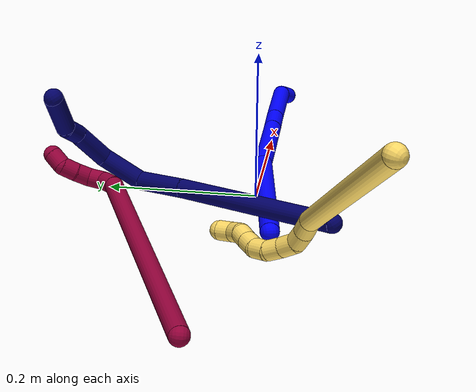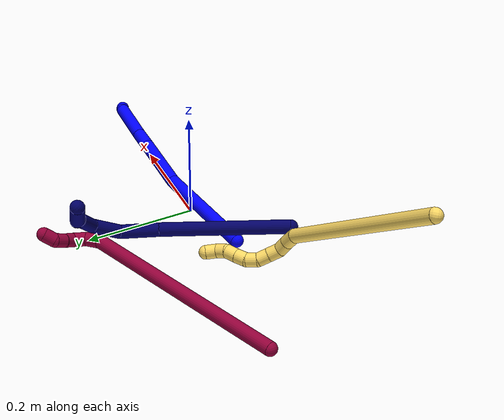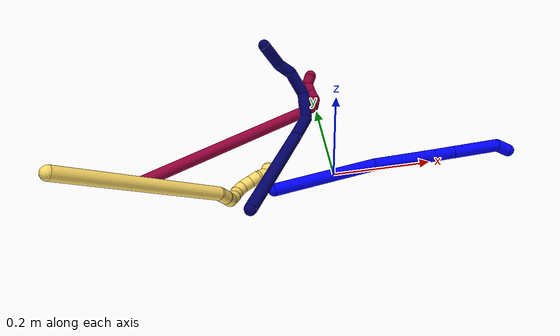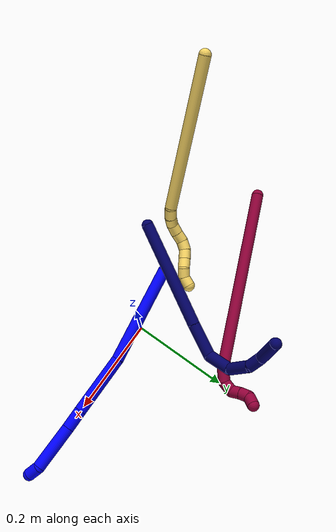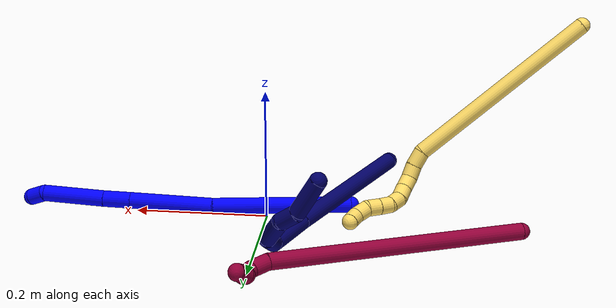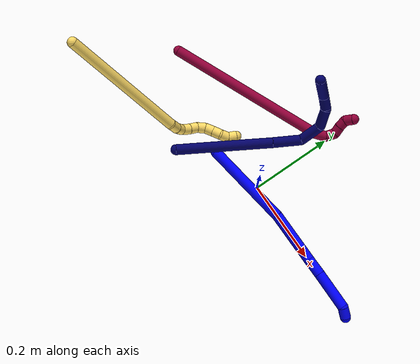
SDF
<sdf version="1.7">
 <world name="default">
  <model name="1">
   <static>0</static>
   <link name="1">
    <collision name="collision-cylinder-e_1_1_4">
     <pose>0.097886 0.025939 0.03041 -0.706214 1.18313 -0.485443</pose>
     <geometry><cylinder><radius>0.0125</radius><length>0.211465</length></cylinder></geometry>
     <surface>
      <friction><ode><mu>1.16</mu><mu2>1.16</mu2><slip1>0</slip1><slip2>0</slip2></ode></friction>
      <contact><ode><kp>1e+06</kp><kd>1</kd><max_vel>0</max_vel><min_depth>0.001</min_depth></ode></contact>
     </surface>
    </collision>
    <visual name="visual-cylinder-e_1_1_4">
     <pose>0.097886 0.025939 0.03041 -0.706214 1.18313 -0.485443</pose>
     <geometry><cylinder><radius>0.0125</radius><length>0.211465</length></cylinder></geometry>
     <material><ambient>0 0 1 1</ambient></material>
    </visual>
    <collision name="collision-cylinder-e_2_4_5">
     <pose>0.250681 0.068848 0.087689 -0.563329 1.04612 -0.330661</pose>
     <geometry><cylinder><radius>0.0125</radius><length>0.126883</length></cylinder></geometry>
     <surface>
      <friction><ode><mu>1.16</mu><mu2>1.16</mu2><slip1>0</slip1><slip2>0</slip2></ode></friction>
      <contact><ode><kp>1e+06</kp><kd>1</kd><max_vel>0</max_vel><min_depth>0.001</min_depth></ode></contact>
     </surface>
    </collision>
    <visual name="visual-cylinder-e_2_4_5">
     <pose>0.250681 0.068848 0.087689 -0.563329 1.04612 -0.330661</pose>
     <geometry><cylinder><radius>0.0125</radius><length>0.126883</length></cylinder></geometry>
     <material><ambient>0 0 1 1</ambient></material>
    </visual>
    <collision name="collision-cylinder-e_3_5_6">
     <pose>0.323725 0.091399 0.123114 -0.57799 1.0579 -0.344132</pose>
     <geometry><cylinder><radius>0.0125</radius><length>0.041631</length></cylinder></geometry>
     <surface>
      <friction><ode><mu>1.16</mu><mu2>1.16</mu2><slip1>0</slip1><slip2>0</slip2></ode></friction>
      <contact><ode><kp>1e+06</kp><kd>1</kd><max_vel>0</max_vel><min_depth>0.001</min_depth></ode></contact>
     </surface>
    </collision>
    <visual name="visual-cylinder-e_3_5_6">
     <pose>0.323725 0.091399 0.123114 -0.57799 1.0579 -0.344132</pose>
     <geometry><cylinder><radius>0.0125</radius><length>0.041631</length></cylinder></geometry>
     <material><ambient>0 0 1 1</ambient></material>
    </visual>
    <collision name="collision-cylinder-e_4_6_7">
     <pose>0.381693 0.110365 0.151748 -0.58797 1.02608 -0.337868</pose>
     <geometry><cylinder><radius>0.0125</radius><length>0.093142</length></cylinder></geometry>
     <surface>
      <friction><ode><mu>1.16</mu><mu2>1.16</mu2><slip1>0</slip1><slip2>0</slip2></ode></friction>
      <contact><ode><kp>1e+06</kp><kd>1</kd><max_vel>0</max_vel><min_depth>0.001</min_depth></ode></contact>
     </surface>
    </collision>
    <visual name="visual-cylinder-e_4_6_7">
     <pose>0.381693 0.110365 0.151748 -0.58797 1.02608 -0.337868</pose>
     <geometry><cylinder><radius>0.0125</radius><length>0.093142</length></cylinder></geometry>
     <material><ambient>0 0 1 1</ambient></material>
    </visual>
    <collision name="collision-cylinder-e_5_7_2">
     <pose>0.431173 0.121071 0.180791 0.290436 0.800865 0.123656</pose>
     <geometry><cylinder><radius>0.0125</radius><length>0.02688</length></cylinder></geometry>
     <surface>
      <friction><ode><mu>1.16</mu><mu2>1.16</mu2><slip1>0</slip1><slip2>0</slip2></ode></friction>
      <contact><ode><kp>1e+06</kp><kd>1</kd><max_vel>0</max_vel><min_depth>0.001</min_depth></ode></contact>
     </surface>
    </collision>
    <visual name="visual-cylinder-e_5_7_2">
     <pose>0.431173 0.121071 0.180791 0.290436 0.800865 0.123656</pose>
     <geometry><cylinder><radius>0.0125</radius><length>0.02688</length></cylinder></geometry>
     <material><ambient>0 0 1 1</ambient></material>
    </visual>
    <collision name="collision-sphere-2">
     <pose>0.440822 0.118392 0.189755 0 -0 0</pose>
     <geometry><sphere><radius>0.0125</radius></sphere></geometry>
     <surface>
      <friction><ode><mu>1.16</mu><mu2>1.16</mu2><slip1>0</slip1><slip2>0</slip2></ode></friction>
      <contact><ode><kp>1e+06</kp><kd>1</kd><max_vel>0</max_vel><min_depth>0.001</min_depth></ode></contact>
     </surface>
    </collision>
    <visual name="visual-sphere-2">
     <pose>0.440822 0.118392 0.189755 0 -0 0</pose>
     <geometry><sphere><radius>0.0125</radius></sphere></geometry>
     <material><ambient>0 0 1 1</ambient></material>
    </visual>
    <collision name="collision-sphere-7">
     <pose>0.421524 0.12375 0.171828 0 -0 0</pose>
     <geometry><sphere><radius>0.0125</radius></sphere></geometry>
     <surface>
      <friction><ode><mu>1.16</mu><mu2>1.16</mu2><slip1>0</slip1><slip2>0</slip2></ode></friction>
      <contact><ode><kp>1e+06</kp><kd>1</kd><max_vel>0</max_vel><min_depth>0.001</min_depth></ode></contact>
     </surface>
    </collision>
    <visual name="visual-sphere-7">
     <pose>0.421524 0.12375 0.171828 0 -0 0</pose>
     <geometry><sphere><radius>0.0125</radius></sphere></geometry>
     <material><ambient>0 0 1 1</ambient></material>
    </visual>
    <collision name="collision-sphere-6">
     <pose>0.341862 0.09698 0.131669 0 -0 0</pose>
     <geometry><sphere><radius>0.0125</radius></sphere></geometry>
     <surface>
      <friction><ode><mu>1.16</mu><mu2>1.16</mu2><slip1>0</slip1><slip2>0</slip2></ode></friction>
      <contact><ode><kp>1e+06</kp><kd>1</kd><max_vel>0</max_vel><min_depth>0.001</min_depth></ode></contact>
     </surface>
    </collision>
    <visual name="visual-sphere-6">
     <pose>0.341862 0.09698 0.131669 0 -0 0</pose>
     <geometry><sphere><radius>0.0125</radius></sphere></geometry>
     <material><ambient>0 0 1 1</ambient></material>
    </visual>
    <collision name="collision-sphere-5">
     <pose>0.305588 0.085819 0.114559 0 -0 0</pose>
     <geometry><sphere><radius>0.0125</radius></sphere></geometry>
     <surface>
      <friction><ode><mu>1.16</mu><mu2>1.16</mu2><slip1>0</slip1><slip2>0</slip2></ode></friction>
      <contact><ode><kp>1e+06</kp><kd>1</kd><max_vel>0</max_vel><min_depth>0.001</min_depth></ode></contact>
     </surface>
    </collision>
    <visual name="visual-sphere-5">
     <pose>0.305588 0.085819 0.114559 0 -0 0</pose>
     <geometry><sphere><radius>0.0125</radius></sphere></geometry>
     <material><ambient>0 0 1 1</ambient></material>
    </visual>
    <collision name="collision-sphere-1">
     <geometry><sphere><radius>0.0125</radius></sphere></geometry>
     <surface>
      <friction><ode><mu>1.16</mu><mu2>1.16</mu2><slip1>0</slip1><slip2>0</slip2></ode></friction>
      <contact><ode><kp>1e+06</kp><kd>1</kd><max_vel>0</max_vel><min_depth>0.001</min_depth></ode></contact>
     </surface>
    </collision>
    <visual name="visual-sphere-1">
     <geometry><sphere><radius>0.0125</radius></sphere></geometry>
     <material><ambient>0 0 1 1</ambient></material>
    </visual>
    <collision name="collision-sphere-4">
     <pose>0.195773 0.051878 0.06082 0 -0 0</pose>
     <geometry><sphere><radius>0.0125</radius></sphere></geometry>
     <surface>
      <friction><ode><mu>1.16</mu><mu2>1.16</mu2><slip1>0</slip1><slip2>0</slip2></ode></friction>
      <contact><ode><kp>1e+06</kp><kd>1</kd><max_vel>0</max_vel><min_depth>0.001</min_depth></ode></contact>
     </surface>
    </collision>
    <visual name="visual-sphere-4">
     <pose>0.195773 0.051878 0.06082 0 -0 0</pose>
     <geometry><sphere><radius>0.0125</radius></sphere></geometry>
     <material><ambient>0 0 1 1</ambient></material>
    </visual>
    <inertial>
     <pose>0.22625 0.06312 0.083352 0 -0 0</pose>
     <mass>0.5</mass>
     <inertia>
      <ixx>0.000242</ixx>
      <ixy>0</ixy>
      <ixz>0</ixz>
      <iyy>0.000829</iyy>
      <iyz>0</iyz>
      <izz>-0.001207</izz>
     </inertia>
    </inertial>
   </link>
   <pose>-0.125701 -0.032196 0.012259 1.63876 0.236014 0.462138</pose>
  </model>
  <model name="5">
   <static>0</static>
   <link name="5">
    <collision name="collision-cylinder-e_1_1_4">
     <pose>0.031094 0.1126 -0.103264 -2.31297 0.200775 -0.450321</pose>
     <geometry><cylinder><radius>0.0125</radius><length>0.311827</length></cylinder></geometry>
     <surface>
      <friction><ode><mu>1.16</mu><mu2>1.16</mu2><slip1>0</slip1><slip2>0</slip2></ode></friction>
      <contact><ode><kp>1e+06</kp><kd>1</kd><max_vel>0</max_vel><min_depth>0.001</min_depth></ode></contact>
     </surface>
    </collision>
    <visual name="visual-cylinder-e_1_1_4">
     <pose>0.031094 0.1126 -0.103264 -2.31297 0.200775 -0.450321</pose>
     <geometry><cylinder><radius>0.0125</radius><length>0.311827</length></cylinder></geometry>
     <material><ambient>1 0.858824 0.4 1</ambient></material>
    </visual>
    <collision name="collision-cylinder-e_2_4_5">
     <pose>0.068732 0.233858 -0.212446 -2.17048 0.557921 -0.994589</pose>
     <geometry><cylinder><radius>0.0125</radius><length>0.024723</length></cylinder></geometry>
     <surface>
      <friction><ode><mu>1.16</mu><mu2>1.16</mu2><slip1>0</slip1><slip2>0</slip2></ode></friction>
      <contact><ode><kp>1e+06</kp><kd>1</kd><max_vel>0</max_vel><min_depth>0.001</min_depth></ode></contact>
     </surface>
    </collision>
    <visual name="visual-cylinder-e_2_4_5">
     <pose>0.068732 0.233858 -0.212446 -2.17048 0.557921 -0.994589</pose>
     <geometry><cylinder><radius>0.0125</radius><length>0.024723</length></cylinder></geometry>
     <material><ambient>1 0.858824 0.4 1</ambient></material>
    </visual>
    <collision name="collision-cylinder-e_3_5_6">
     <pose>0.082415 0.2483 -0.223436 -2.29049 0.748007 -1.42733</pose>
     <geometry><cylinder><radius>0.0125</radius><length>0.02099</length></cylinder></geometry>
     <surface>
      <friction><ode><mu>1.16</mu><mu2>1.16</mu2><slip1>0</slip1><slip2>0</slip2></ode></friction>
      <contact><ode><kp>1e+06</kp><kd>1</kd><max_vel>0</max_vel><min_depth>0.001</min_depth></ode></contact>
     </surface>
    </collision>
    <visual name="visual-cylinder-e_3_5_6">
     <pose>0.082415 0.2483 -0.223436 -2.29049 0.748007 -1.42733</pose>
     <geometry><cylinder><radius>0.0125</radius><length>0.02099</length></cylinder></geometry>
     <material><ambient>1 0.858824 0.4 1</ambient></material>
    </visual>
    <collision name="collision-cylinder-e_4_6_7">
     <pose>0.095686 0.256122 -0.237119 -2.90946 0.606 -2.42766</pose>
     <geometry><cylinder><radius>0.0125</radius><length>0.021534</length></cylinder></geometry>
     <surface>
      <friction><ode><mu>1.16</mu><mu2>1.16</mu2><slip1>0</slip1><slip2>0</slip2></ode></friction>
      <contact><ode><kp>1e+06</kp><kd>1</kd><max_vel>0</max_vel><min_depth>0.001</min_depth></ode></contact>
     </surface>
    </collision>
    <visual name="visual-cylinder-e_4_6_7">
     <pose>0.095686 0.256122 -0.237119 -2.90946 0.606 -2.42766</pose>
     <geometry><cylinder><radius>0.0125</radius><length>0.021534</length></cylinder></geometry>
     <material><ambient>1 0.858824 0.4 1</ambient></material>
    </visual>
    <collision name="collision-cylinder-e_5_7_8">
     <pose>0.107713 0.258769 -0.254169 -3.06931 0.608506 -2.9123</pose>
     <geometry><cylinder><radius>0.0125</radius><length>0.020621</length></cylinder></geometry>
     <surface>
      <friction><ode><mu>1.16</mu><mu2>1.16</mu2><slip1>0</slip1><slip2>0</slip2></ode></friction>
      <contact><ode><kp>1e+06</kp><kd>1</kd><max_vel>0</max_vel><min_depth>0.001</min_depth></ode></contact>
     </surface>
    </collision>
    <visual name="visual-cylinder-e_5_7_8">
     <pose>0.107713 0.258769 -0.254169 -3.06931 0.608506 -2.9123</pose>
     <geometry><cylinder><radius>0.0125</radius><length>0.020621</length></cylinder></geometry>
     <material><ambient>1 0.858824 0.4 1</ambient></material>
    </visual>
    <collision name="collision-cylinder-e_6_8_9">
     <pose>0.115542 0.260575 -0.272444 -3.02066 0.192866 -2.02316</pose>
     <geometry><cylinder><radius>0.0125</radius><length>0.020193</length></cylinder></geometry>
     <surface>
      <friction><ode><mu>1.16</mu><mu2>1.16</mu2><slip1>0</slip1><slip2>0</slip2></ode></friction>
      <contact><ode><kp>1e+06</kp><kd>1</kd><max_vel>0</max_vel><min_depth>0.001</min_depth></ode></contact>
     </surface>
    </collision>
    <visual name="visual-cylinder-e_6_8_9">
     <pose>0.115542 0.260575 -0.272444 -3.02066 0.192866 -2.02316</pose>
     <geometry><cylinder><radius>0.0125</radius><length>0.020193</length></cylinder></geometry>
     <material><ambient>1 0.858824 0.4 1</ambient></material>
    </visual>
    <collision name="collision-cylinder-e_7_9_10">
     <pose>0.11567 0.264388 -0.291786 -2.87292 -0.181275 1.18404</pose>
     <geometry><cylinder><radius>0.0125</radius><length>0.020047</length></cylinder></geometry>
     <surface>
      <friction><ode><mu>1.16</mu><mu2>1.16</mu2><slip1>0</slip1><slip2>0</slip2></ode></friction>
      <contact><ode><kp>1e+06</kp><kd>1</kd><max_vel>0</max_vel><min_depth>0.001</min_depth></ode></contact>
     </surface>
    </collision>
    <visual name="visual-cylinder-e_7_9_10">
     <pose>0.11567 0.264388 -0.291786 -2.87292 -0.181275 1.18404</pose>
     <geometry><cylinder><radius>0.0125</radius><length>0.020047</length></cylinder></geometry>
     <material><ambient>1 0.858824 0.4 1</ambient></material>
    </visual>
    <collision name="collision-cylinder-e_8_10_11">
     <pose>0.111601 0.269633 -0.310696 -2.86905 -0.227625 1.3898</pose>
     <geometry><cylinder><radius>0.0125</radius><length>0.020045</length></cylinder></geometry>
     <surface>
      <friction><ode><mu>1.16</mu><mu2>1.16</mu2><slip1>0</slip1><slip2>0</slip2></ode></friction>
      <contact><ode><kp>1e+06</kp><kd>1</kd><max_vel>0</max_vel><min_depth>0.001</min_depth></ode></contact>
     </surface>
    </collision>
    <visual name="visual-cylinder-e_8_10_11">
     <pose>0.111601 0.269633 -0.310696 -2.86905 -0.227625 1.3898</pose>
     <geometry><cylinder><radius>0.0125</radius><length>0.020045</length></cylinder></geometry>
     <material><ambient>1 0.858824 0.4 1</ambient></material>
    </visual>
    <collision name="collision-cylinder-e_9_11_12">
     <pose>0.110785 0.27657 -0.32901 -2.69118 0.145003 -0.614014</pose>
     <geometry><cylinder><radius>0.0125</radius><length>0.020005</length></cylinder></geometry>
     <surface>
      <friction><ode><mu>1.16</mu><mu2>1.16</mu2><slip1>0</slip1><slip2>0</slip2></ode></friction>
      <contact><ode><kp>1e+06</kp><kd>1</kd><max_vel>0</max_vel><min_depth>0.001</min_depth></ode></contact>
     </surface>
    </collision>
    <visual name="visual-cylinder-e_9_11_12">
     <pose>0.110785 0.27657 -0.32901 -2.69118 0.145003 -0.614014</pose>
     <geometry><cylinder><radius>0.0125</radius><length>0.020005</length></cylinder></geometry>
     <material><ambient>1 0.858824 0.4 1</ambient></material>
    </visual>
    <collision name="collision-cylinder-e_10_12_2">
     <pose>0.115383 0.280112 -0.347387 3.06074 0.320567 2.65127</pose>
     <geometry><cylinder><radius>0.0125</radius><length>0.020014</length></cylinder></geometry>
     <surface>
      <friction><ode><mu>1.16</mu><mu2>1.16</mu2><slip1>0</slip1><slip2>0</slip2></ode></friction>
      <contact><ode><kp>1e+06</kp><kd>1</kd><max_vel>0</max_vel><min_depth>0.001</min_depth></ode></contact>
     </surface>
    </collision>
    <visual name="visual-cylinder-e_10_12_2">
     <pose>0.115383 0.280112 -0.347387 3.06074 0.320567 2.65127</pose>
     <geometry><cylinder><radius>0.0125</radius><length>0.020014</length></cylinder></geometry>
     <material><ambient>1 0.858824 0.4 1</ambient></material>
    </visual>
    <collision name="collision-sphere-2">
     <pose>0.118536 0.279345 -0.356853 0 -0 0</pose>
     <geometry><sphere><radius>0.0125</radius></sphere></geometry>
     <surface>
      <friction><ode><mu>1.16</mu><mu2>1.16</mu2><slip1>0</slip1><slip2>0</slip2></ode></friction>
      <contact><ode><kp>1e+06</kp><kd>1</kd><max_vel>0</max_vel><min_depth>0.001</min_depth></ode></contact>
     </surface>
    </collision>
    <visual name="visual-sphere-2">
     <pose>0.118536 0.279345 -0.356853 0 -0 0</pose>
     <geometry><sphere><radius>0.0125</radius></sphere></geometry>
     <material><ambient>1 0.858824 0.4 1</ambient></material>
    </visual>
    <collision name="collision-sphere-12">
     <pose>0.11223 0.280879 -0.337921 0 -0 0</pose>
     <geometry><sphere><radius>0.0125</radius></sphere></geometry>
     <surface>
      <friction><ode><mu>1.16</mu><mu2>1.16</mu2><slip1>0</slip1><slip2>0</slip2></ode></friction>
      <contact><ode><kp>1e+06</kp><kd>1</kd><max_vel>0</max_vel><min_depth>0.001</min_depth></ode></contact>
     </surface>
    </collision>
    <visual name="visual-sphere-12">
     <pose>0.11223 0.280879 -0.337921 0 -0 0</pose>
     <geometry><sphere><radius>0.0125</radius></sphere></geometry>
     <material><ambient>1 0.858824 0.4 1</ambient></material>
    </visual>
    <collision name="collision-sphere-11">
     <pose>0.109339 0.272262 -0.320099 0 -0 0</pose>
     <geometry><sphere><radius>0.0125</radius></sphere></geometry>
     <surface>
      <friction><ode><mu>1.16</mu><mu2>1.16</mu2><slip1>0</slip1><slip2>0</slip2></ode></friction>
      <contact><ode><kp>1e+06</kp><kd>1</kd><max_vel>0</max_vel><min_depth>0.001</min_depth></ode></contact>
     </surface>
    </collision>
    <visual name="visual-sphere-11">
     <pose>0.109339 0.272262 -0.320099 0 -0 0</pose>
     <geometry><sphere><radius>0.0125</radius></sphere></geometry>
     <material><ambient>1 0.858824 0.4 1</ambient></material>
    </visual>
    <collision name="collision-sphere-10">
     <pose>0.113863 0.267005 -0.301292 0 -0 0</pose>
     <geometry><sphere><radius>0.0125</radius></sphere></geometry>
     <surface>
      <friction><ode><mu>1.16</mu><mu2>1.16</mu2><slip1>0</slip1><slip2>0</slip2></ode></friction>
      <contact><ode><kp>1e+06</kp><kd>1</kd><max_vel>0</max_vel><min_depth>0.001</min_depth></ode></contact>
     </surface>
    </collision>
    <visual name="visual-sphere-10">
     <pose>0.113863 0.267005 -0.301292 0 -0 0</pose>
     <geometry><sphere><radius>0.0125</radius></sphere></geometry>
     <material><ambient>1 0.858824 0.4 1</ambient></material>
    </visual>
    <collision name="collision-sphere-9">
     <pose>0.117477 0.26177 -0.282281 0 -0 0</pose>
     <geometry><sphere><radius>0.0125</radius></sphere></geometry>
     <surface>
      <friction><ode><mu>1.16</mu><mu2>1.16</mu2><slip1>0</slip1><slip2>0</slip2></ode></friction>
      <contact><ode><kp>1e+06</kp><kd>1</kd><max_vel>0</max_vel><min_depth>0.001</min_depth></ode></contact>
     </surface>
    </collision>
    <visual name="visual-sphere-9">
     <pose>0.117477 0.26177 -0.282281 0 -0 0</pose>
     <geometry><sphere><radius>0.0125</radius></sphere></geometry>
     <material><ambient>1 0.858824 0.4 1</ambient></material>
    </visual>
    <collision name="collision-sphere-4">
     <pose>0.062187 0.2252 -0.206527 0 -0 0</pose>
     <geometry><sphere><radius>0.0125</radius></sphere></geometry>
     <surface>
      <friction><ode><mu>1.16</mu><mu2>1.16</mu2><slip1>0</slip1><slip2>0</slip2></ode></friction>
      <contact><ode><kp>1e+06</kp><kd>1</kd><max_vel>0</max_vel><min_depth>0.001</min_depth></ode></contact>
     </surface>
    </collision>
    <visual name="visual-sphere-4">
     <pose>0.062187 0.2252 -0.206527 0 -0 0</pose>
     <geometry><sphere><radius>0.0125</radius></sphere></geometry>
     <material><ambient>1 0.858824 0.4 1</ambient></material>
    </visual>
    <collision name="collision-sphere-1">
     <geometry><sphere><radius>0.0125</radius></sphere></geometry>
     <surface>
      <friction><ode><mu>1.16</mu><mu2>1.16</mu2><slip1>0</slip1><slip2>0</slip2></ode></friction>
      <contact><ode><kp>1e+06</kp><kd>1</kd><max_vel>0</max_vel><min_depth>0.001</min_depth></ode></contact>
     </surface>
    </collision>
    <visual name="visual-sphere-1">
     <geometry><sphere><radius>0.0125</radius></sphere></geometry>
     <material><ambient>1 0.858824 0.4 1</ambient></material>
    </visual>
    <collision name="collision-sphere-8">
     <pose>0.113606 0.25938 -0.262607 0 -0 0</pose>
     <geometry><sphere><radius>0.0125</radius></sphere></geometry>
     <surface>
      <friction><ode><mu>1.16</mu><mu2>1.16</mu2><slip1>0</slip1><slip2>0</slip2></ode></friction>
      <contact><ode><kp>1e+06</kp><kd>1</kd><max_vel>0</max_vel><min_depth>0.001</min_depth></ode></contact>
     </surface>
    </collision>
    <visual name="visual-sphere-8">
     <pose>0.113606 0.25938 -0.262607 0 -0 0</pose>
     <geometry><sphere><radius>0.0125</radius></sphere></geometry>
     <material><ambient>1 0.858824 0.4 1</ambient></material>
    </visual>
    <collision name="collision-sphere-5">
     <pose>0.075276 0.242515 -0.218364 0 -0 0</pose>
     <geometry><sphere><radius>0.0125</radius></sphere></geometry>
     <surface>
      <friction><ode><mu>1.16</mu><mu2>1.16</mu2><slip1>0</slip1><slip2>0</slip2></ode></friction>
      <contact><ode><kp>1e+06</kp><kd>1</kd><max_vel>0</max_vel><min_depth>0.001</min_depth></ode></contact>
     </surface>
    </collision>
    <visual name="visual-sphere-5">
     <pose>0.075276 0.242515 -0.218364 0 -0 0</pose>
     <geometry><sphere><radius>0.0125</radius></sphere></geometry>
     <material><ambient>1 0.858824 0.4 1</ambient></material>
    </visual>
    <collision name="collision-sphere-6">
     <pose>0.089553 0.254086 -0.228507 0 -0 0</pose>
     <geometry><sphere><radius>0.0125</radius></sphere></geometry>
     <surface>
      <friction><ode><mu>1.16</mu><mu2>1.16</mu2><slip1>0</slip1><slip2>0</slip2></ode></friction>
      <contact><ode><kp>1e+06</kp><kd>1</kd><max_vel>0</max_vel><min_depth>0.001</min_depth></ode></contact>
     </surface>
    </collision>
    <visual name="visual-sphere-6">
     <pose>0.089553 0.254086 -0.228507 0 -0 0</pose>
     <geometry><sphere><radius>0.0125</radius></sphere></geometry>
     <material><ambient>1 0.858824 0.4 1</ambient></material>
    </visual>
    <collision name="collision-sphere-7">
     <pose>0.101819 0.258158 -0.245731 0 -0 0</pose>
     <geometry><sphere><radius>0.0125</radius></sphere></geometry>
     <surface>
      <friction><ode><mu>1.16</mu><mu2>1.16</mu2><slip1>0</slip1><slip2>0</slip2></ode></friction>
      <contact><ode><kp>1e+06</kp><kd>1</kd><max_vel>0</max_vel><min_depth>0.001</min_depth></ode></contact>
     </surface>
    </collision>
    <visual name="visual-sphere-7">
     <pose>0.101819 0.258158 -0.245731 0 -0 0</pose>
     <geometry><sphere><radius>0.0125</radius></sphere></geometry>
     <material><ambient>1 0.858824 0.4 1</ambient></material>
    </visual>
    <inertial>
     <pose>0.057643 0.168125 -0.167207 0 -0 0</pose>
     <mass>0.5</mass>
     <inertia>
      <ixx>0.001163</ixx>
      <ixy>0</ixy>
      <ixz>0</ixz>
      <iyy>-0.002442</iyy>
      <iyz>0</iyz>
      <izz>-0.002377</izz>
     </inertia>
    </inertial>
   </link>
   <pose>-0.466006 -0.174869 0.266157 -1.64778 0.850832 2.40319</pose>
  </model>
  <model name="7">
   <static>0</static>
   <link name="7">
    <collision name="collision-cylinder-e_1_1_4">
     <pose>0.057331 0.087496 -0.047356 -2.06688 0.52278 -0.843985</pose>
     <geometry><cylinder><radius>0.0125</radius><length>0.229651</length></cylinder></geometry>
     <surface>
      <friction><ode><mu>1.16</mu><mu2>1.16</mu2><slip1>0</slip1><slip2>0</slip2></ode></friction>
      <contact><ode><kp>1e+06</kp><kd>1</kd><max_vel>0</max_vel><min_depth>0.001</min_depth></ode></contact>
     </surface>
    </collision>
    <visual name="visual-cylinder-e_1_1_4">
     <pose>0.057331 0.087496 -0.047356 -2.06688 0.52278 -0.843985</pose>
     <geometry><cylinder><radius>0.0125</radius><length>0.229651</length></cylinder></geometry>
     <material><ambient>0.003922 0 0.403922 1</ambient></material>
    </visual>
    <collision name="collision-cylinder-e_2_4_5">
     <pose>0.133421 0.201561 -0.108837 -2.05944 0.557427 -0.888897</pose>
     <geometry><cylinder><radius>0.0125</radius><length>0.070917</length></cylinder></geometry>
     <surface>
      <friction><ode><mu>1.16</mu><mu2>1.16</mu2><slip1>0</slip1><slip2>0</slip2></ode></friction>
      <contact><ode><kp>1e+06</kp><kd>1</kd><max_vel>0</max_vel><min_depth>0.001</min_depth></ode></contact>
     </surface>
    </collision>
    <visual name="visual-cylinder-e_2_4_5">
     <pose>0.133421 0.201561 -0.108837 -2.05944 0.557427 -0.888897</pose>
     <geometry><cylinder><radius>0.0125</radius><length>0.070917</length></cylinder></geometry>
     <material><ambient>0.003922 0 0.403922 1</ambient></material>
    </visual>
    <collision name="collision-cylinder-e_3_5_6">
     <pose>0.164911 0.233014 -0.148012 -2.94903 0.46277 -2.36353</pose>
     <geometry><cylinder><radius>0.0125</radius><length>0.057043</length></cylinder></geometry>
     <surface>
      <friction><ode><mu>1.16</mu><mu2>1.16</mu2><slip1>0</slip1><slip2>0</slip2></ode></friction>
      <contact><ode><kp>1e+06</kp><kd>1</kd><max_vel>0</max_vel><min_depth>0.001</min_depth></ode></contact>
     </surface>
    </collision>
    <visual name="visual-cylinder-e_3_5_6">
     <pose>0.164911 0.233014 -0.148012 -2.94903 0.46277 -2.36353</pose>
     <geometry><cylinder><radius>0.0125</radius><length>0.057043</length></cylinder></geometry>
     <material><ambient>0.003922 0 0.403922 1</ambient></material>
    </visual>
    <collision name="collision-cylinder-e_4_6_7">
     <pose>0.185374 0.227002 -0.196153 2.70071 0.29398 1.16776</pose>
     <geometry><cylinder><radius>0.0125</radius><length>0.053354</length></cylinder></geometry>
     <surface>
      <friction><ode><mu>1.16</mu><mu2>1.16</mu2><slip1>0</slip1><slip2>0</slip2></ode></friction>
      <contact><ode><kp>1e+06</kp><kd>1</kd><max_vel>0</max_vel><min_depth>0.001</min_depth></ode></contact>
     </surface>
    </collision>
    <visual name="visual-cylinder-e_4_6_7">
     <pose>0.185374 0.227002 -0.196153 2.70071 0.29398 1.16776</pose>
     <geometry><cylinder><radius>0.0125</radius><length>0.053354</length></cylinder></geometry>
     <material><ambient>0.003922 0 0.403922 1</ambient></material>
    </visual>
    <collision name="collision-cylinder-e_5_7_8">
     <pose>0.198183 0.204523 -0.227931 2.21427 0.337369 0.656542</pose>
     <geometry><cylinder><radius>0.0125</radius><length>0.030688</length></cylinder></geometry>
     <surface>
      <friction><ode><mu>1.16</mu><mu2>1.16</mu2><slip1>0</slip1><slip2>0</slip2></ode></friction>
      <contact><ode><kp>1e+06</kp><kd>1</kd><max_vel>0</max_vel><min_depth>0.001</min_depth></ode></contact>
     </surface>
    </collision>
    <visual name="visual-cylinder-e_5_7_8">
     <pose>0.198183 0.204523 -0.227931 2.21427 0.337369 0.656542</pose>
     <geometry><cylinder><radius>0.0125</radius><length>0.030688</length></cylinder></geometry>
     <material><ambient>0.003922 0 0.403922 1</ambient></material>
    </visual>
    <collision name="collision-cylinder-e_6_8_2">
     <pose>0.201346 0.173264 -0.258072 2.3994 -0.065728 -0.168574</pose>
     <geometry><cylinder><radius>0.0125</radius><length>0.058346</length></cylinder></geometry>
     <surface>
      <friction><ode><mu>1.16</mu><mu2>1.16</mu2><slip1>0</slip1><slip2>0</slip2></ode></friction>
      <contact><ode><kp>1e+06</kp><kd>1</kd><max_vel>0</max_vel><min_depth>0.001</min_depth></ode></contact>
     </surface>
    </collision>
    <visual name="visual-cylinder-e_6_8_2">
     <pose>0.201346 0.173264 -0.258072 2.3994 -0.065728 -0.168574</pose>
     <geometry><cylinder><radius>0.0125</radius><length>0.058346</length></cylinder></geometry>
     <material><ambient>0.003922 0 0.403922 1</ambient></material>
    </visual>
    <collision name="collision-sphere-2">
     <pose>0.19943 0.153589 -0.279526 0 -0 0</pose>
     <geometry><sphere><radius>0.0125</radius></sphere></geometry>
     <surface>
      <friction><ode><mu>1.16</mu><mu2>1.16</mu2><slip1>0</slip1><slip2>0</slip2></ode></friction>
      <contact><ode><kp>1e+06</kp><kd>1</kd><max_vel>0</max_vel><min_depth>0.001</min_depth></ode></contact>
     </surface>
    </collision>
    <visual name="visual-sphere-2">
     <pose>0.19943 0.153589 -0.279526 0 -0 0</pose>
     <geometry><sphere><radius>0.0125</radius></sphere></geometry>
     <material><ambient>0.003922 0 0.403922 1</ambient></material>
    </visual>
    <collision name="collision-sphere-4">
     <pose>0.114663 0.174991 -0.094711 0 -0 0</pose>
     <geometry><sphere><radius>0.0125</radius></sphere></geometry>
     <surface>
      <friction><ode><mu>1.16</mu><mu2>1.16</mu2><slip1>0</slip1><slip2>0</slip2></ode></friction>
      <contact><ode><kp>1e+06</kp><kd>1</kd><max_vel>0</max_vel><min_depth>0.001</min_depth></ode></contact>
     </surface>
    </collision>
    <visual name="visual-sphere-4">
     <pose>0.114663 0.174991 -0.094711 0 -0 0</pose>
     <geometry><sphere><radius>0.0125</radius></sphere></geometry>
     <material><ambient>0.003922 0 0.403922 1</ambient></material>
    </visual>
    <collision name="collision-sphere-1">
     <geometry><sphere><radius>0.0125</radius></sphere></geometry>
     <surface>
      <friction><ode><mu>1.16</mu><mu2>1.16</mu2><slip1>0</slip1><slip2>0</slip2></ode></friction>
      <contact><ode><kp>1e+06</kp><kd>1</kd><max_vel>0</max_vel><min_depth>0.001</min_depth></ode></contact>
     </surface>
    </collision>
    <visual name="visual-sphere-1">
     <geometry><sphere><radius>0.0125</radius></sphere></geometry>
     <material><ambient>0.003922 0 0.403922 1</ambient></material>
    </visual>
    <collision name="collision-sphere-8">
     <pose>0.203262 0.19294 -0.236618 0 -0 0</pose>
     <geometry><sphere><radius>0.0125</radius></sphere></geometry>
     <surface>
      <friction><ode><mu>1.16</mu><mu2>1.16</mu2><slip1>0</slip1><slip2>0</slip2></ode></friction>
      <contact><ode><kp>1e+06</kp><kd>1</kd><max_vel>0</max_vel><min_depth>0.001</min_depth></ode></contact>
     </surface>
    </collision>
    <visual name="visual-sphere-8">
     <pose>0.203262 0.19294 -0.236618 0 -0 0</pose>
     <geometry><sphere><radius>0.0125</radius></sphere></geometry>
     <material><ambient>0.003922 0 0.403922 1</ambient></material>
    </visual>
    <collision name="collision-sphere-5">
     <pose>0.152178 0.22813 -0.122962 0 -0 0</pose>
     <geometry><sphere><radius>0.0125</radius></sphere></geometry>
     <surface>
      <friction><ode><mu>1.16</mu><mu2>1.16</mu2><slip1>0</slip1><slip2>0</slip2></ode></friction>
      <contact><ode><kp>1e+06</kp><kd>1</kd><max_vel>0</max_vel><min_depth>0.001</min_depth></ode></contact>
     </surface>
    </collision>
    <visual name="visual-sphere-5">
     <pose>0.152178 0.22813 -0.122962 0 -0 0</pose>
     <geometry><sphere><radius>0.0125</radius></sphere></geometry>
     <material><ambient>0.003922 0 0.403922 1</ambient></material>
    </visual>
    <collision name="collision-sphere-6">
     <pose>0.177644 0.237898 -0.173062 0 -0 0</pose>
     <geometry><sphere><radius>0.0125</radius></sphere></geometry>
     <surface>
      <friction><ode><mu>1.16</mu><mu2>1.16</mu2><slip1>0</slip1><slip2>0</slip2></ode></friction>
      <contact><ode><kp>1e+06</kp><kd>1</kd><max_vel>0</max_vel><min_depth>0.001</min_depth></ode></contact>
     </surface>
    </collision>
    <visual name="visual-sphere-6">
     <pose>0.177644 0.237898 -0.173062 0 -0 0</pose>
     <geometry><sphere><radius>0.0125</radius></sphere></geometry>
     <material><ambient>0.003922 0 0.403922 1</ambient></material>
    </visual>
    <collision name="collision-sphere-7">
     <pose>0.193104 0.216107 -0.219244 0 -0 0</pose>
     <geometry><sphere><radius>0.0125</radius></sphere></geometry>
     <surface>
      <friction><ode><mu>1.16</mu><mu2>1.16</mu2><slip1>0</slip1><slip2>0</slip2></ode></friction>
      <contact><ode><kp>1e+06</kp><kd>1</kd><max_vel>0</max_vel><min_depth>0.001</min_depth></ode></contact>
     </surface>
    </collision>
    <visual name="visual-sphere-7">
     <pose>0.193104 0.216107 -0.219244 0 -0 0</pose>
     <geometry><sphere><radius>0.0125</radius></sphere></geometry>
     <material><ambient>0.003922 0 0.403922 1</ambient></material>
    </visual>
    <inertial>
     <pose>0.11951 0.152353 -0.119109 0 -0 0</pose>
     <mass>0.5</mass>
     <inertia>
      <ixx>-4.5e-05</ixx>
      <ixy>0</ixy>
      <ixz>0</ixz>
      <iyy>-0.000658</iyy>
      <iyz>0</iyz>
      <izz>-0.001341</izz>
     </inertia>
    </inertial>
   </link>
   <pose>-0.177872 -0.110614 0.055314 -2.79986 0.43409 2.08836</pose>
  </model>
  <model name="8">
   <static>0</static>
   <link name="8">
    <collision name="collision-cylinder-e_1_1_4">
     <pose>0.088145 -0.165543 -0.044875 1.83551 0.474714 0.612554</pose>
     <geometry><cylinder><radius>0.0125</radius><length>0.385682</length></cylinder></geometry>
     <surface>
      <friction><ode><mu>1.16</mu><mu2>1.16</mu2><slip1>0</slip1><slip2>0</slip2></ode></friction>
      <contact><ode><kp>1e+06</kp><kd>1</kd><max_vel>0</max_vel><min_depth>0.001</min_depth></ode></contact>
     </surface>
    </collision>
    <visual name="visual-cylinder-e_1_1_4">
     <pose>0.088145 -0.165543 -0.044875 1.83551 0.474714 0.612554</pose>
     <geometry><cylinder><radius>0.0125</radius><length>0.385682</length></cylinder></geometry>
     <material><ambient>0.584314 0 0.227451 1</ambient></material>
    </visual>
    <collision name="collision-cylinder-e_2_4_5">
     <pose>0.179614 -0.343106 -0.096611 2.08942 0.235763 0.40239</pose>
     <geometry><cylinder><radius>0.0125</radius><length>0.028468</length></cylinder></geometry>
     <surface>
      <friction><ode><mu>1.16</mu><mu2>1.16</mu2><slip1>0</slip1><slip2>0</slip2></ode></friction>
      <contact><ode><kp>1e+06</kp><kd>1</kd><max_vel>0</max_vel><min_depth>0.001</min_depth></ode></contact>
     </surface>
    </collision>
    <visual name="visual-cylinder-e_2_4_5">
     <pose>0.179614 -0.343106 -0.096611 2.08942 0.235763 0.40239</pose>
     <geometry><cylinder><radius>0.0125</radius><length>0.028468</length></cylinder></geometry>
     <material><ambient>0.584314 0 0.227451 1</ambient></material>
    </visual>
    <collision name="collision-cylinder-e_3_5_6">
     <pose>0.184748 -0.360191 -0.113783 2.68504 0.156219 0.649895</pose>
     <geometry><cylinder><radius>0.0125</radius><length>0.023261</length></cylinder></geometry>
     <surface>
      <friction><ode><mu>1.16</mu><mu2>1.16</mu2><slip1>0</slip1><slip2>0</slip2></ode></friction>
      <contact><ode><kp>1e+06</kp><kd>1</kd><max_vel>0</max_vel><min_depth>0.001</min_depth></ode></contact>
     </surface>
    </collision>
    <visual name="visual-cylinder-e_3_5_6">
     <pose>0.184748 -0.360191 -0.113783 2.68504 0.156219 0.649895</pose>
     <geometry><cylinder><radius>0.0125</radius><length>0.023261</length></cylinder></geometry>
     <material><ambient>0.584314 0 0.227451 1</ambient></material>
    </visual>
    <collision name="collision-cylinder-e_4_6_7">
     <pose>0.188867 -0.362143 -0.133592 -2.82484 0.22706 -1.23998</pose>
     <geometry><cylinder><radius>0.0125</radius><length>0.020515</length></cylinder></geometry>
     <surface>
      <friction><ode><mu>1.16</mu><mu2>1.16</mu2><slip1>0</slip1><slip2>0</slip2></ode></friction>
      <contact><ode><kp>1e+06</kp><kd>1</kd><max_vel>0</max_vel><min_depth>0.001</min_depth></ode></contact>
     </surface>
    </collision>
    <visual name="visual-cylinder-e_4_6_7">
     <pose>0.188867 -0.362143 -0.133592 -2.82484 0.22706 -1.23998</pose>
     <geometry><cylinder><radius>0.0125</radius><length>0.020515</length></cylinder></geometry>
     <material><ambient>0.584314 0 0.227451 1</ambient></material>
    </visual>
    <collision name="collision-cylinder-e_5_7_8">
     <pose>0.194265 -0.357132 -0.152537 -2.94335 0.310194 -2.00858</pose>
     <geometry><cylinder><radius>0.0125</radius><length>0.020239</length></cylinder></geometry>
     <surface>
      <friction><ode><mu>1.16</mu><mu2>1.16</mu2><slip1>0</slip1><slip2>0</slip2></ode></friction>
      <contact><ode><kp>1e+06</kp><kd>1</kd><max_vel>0</max_vel><min_depth>0.001</min_depth></ode></contact>
     </surface>
    </collision>
    <visual name="visual-cylinder-e_5_7_8">
     <pose>0.194265 -0.357132 -0.152537 -2.94335 0.310194 -2.00858</pose>
     <geometry><cylinder><radius>0.0125</radius><length>0.020239</length></cylinder></geometry>
     <material><ambient>0.584314 0 0.227451 1</ambient></material>
    </visual>
    <collision name="collision-cylinder-e_6_8_2">
     <pose>0.20467 -0.358391 -0.169448 2.7415 0.734386 2.17134</pose>
     <geometry><cylinder><radius>0.0125</radius><length>0.021836</length></cylinder></geometry>
     <surface>
      <friction><ode><mu>1.16</mu><mu2>1.16</mu2><slip1>0</slip1><slip2>0</slip2></ode></friction>
      <contact><ode><kp>1e+06</kp><kd>1</kd><max_vel>0</max_vel><min_depth>0.001</min_depth></ode></contact>
     </surface>
    </collision>
    <visual name="visual-cylinder-e_6_8_2">
     <pose>0.20467 -0.358391 -0.169448 2.7415 0.734386 2.17134</pose>
     <geometry><cylinder><radius>0.0125</radius><length>0.021836</length></cylinder></geometry>
     <material><ambient>0.584314 0 0.227451 1</ambient></material>
    </visual>
    <collision name="collision-sphere-2">
     <pose>0.211987 -0.361547 -0.176912 0 -0 0</pose>
     <geometry><sphere><radius>0.0125</radius></sphere></geometry>
     <surface>
      <friction><ode><mu>1.16</mu><mu2>1.16</mu2><slip1>0</slip1><slip2>0</slip2></ode></friction>
      <contact><ode><kp>1e+06</kp><kd>1</kd><max_vel>0</max_vel><min_depth>0.001</min_depth></ode></contact>
     </surface>
    </collision>
    <visual name="visual-sphere-2">
     <pose>0.211987 -0.361547 -0.176912 0 -0 0</pose>
     <geometry><sphere><radius>0.0125</radius></sphere></geometry>
     <material><ambient>0.584314 0 0.227451 1</ambient></material>
    </visual>
    <collision name="collision-sphere-4">
     <pose>0.176289 -0.331085 -0.08975 0 -0 0</pose>
     <geometry><sphere><radius>0.0125</radius></sphere></geometry>
     <surface>
      <friction><ode><mu>1.16</mu><mu2>1.16</mu2><slip1>0</slip1><slip2>0</slip2></ode></friction>
      <contact><ode><kp>1e+06</kp><kd>1</kd><max_vel>0</max_vel><min_depth>0.001</min_depth></ode></contact>
     </surface>
    </collision>
    <visual name="visual-sphere-4">
     <pose>0.176289 -0.331085 -0.08975 0 -0 0</pose>
     <geometry><sphere><radius>0.0125</radius></sphere></geometry>
     <material><ambient>0.584314 0 0.227451 1</ambient></material>
    </visual>
    <collision name="collision-sphere-1">
     <geometry><sphere><radius>0.0125</radius></sphere></geometry>
     <surface>
      <friction><ode><mu>1.16</mu><mu2>1.16</mu2><slip1>0</slip1><slip2>0</slip2></ode></friction>
      <contact><ode><kp>1e+06</kp><kd>1</kd><max_vel>0</max_vel><min_depth>0.001</min_depth></ode></contact>
     </surface>
    </collision>
    <visual name="visual-sphere-1">
     <geometry><sphere><radius>0.0125</radius></sphere></geometry>
     <material><ambient>0.584314 0 0.227451 1</ambient></material>
    </visual>
    <collision name="collision-sphere-8">
     <pose>0.197354 -0.355234 -0.161985 0 -0 0</pose>
     <geometry><sphere><radius>0.0125</radius></sphere></geometry>
     <surface>
      <friction><ode><mu>1.16</mu><mu2>1.16</mu2><slip1>0</slip1><slip2>0</slip2></ode></friction>
      <contact><ode><kp>1e+06</kp><kd>1</kd><max_vel>0</max_vel><min_depth>0.001</min_depth></ode></contact>
     </surface>
    </collision>
    <visual name="visual-sphere-8">
     <pose>0.197354 -0.355234 -0.161985 0 -0 0</pose>
     <geometry><sphere><radius>0.0125</radius></sphere></geometry>
     <material><ambient>0.584314 0 0.227451 1</ambient></material>
    </visual>
    <collision name="collision-sphere-5">
     <pose>0.182939 -0.355126 -0.103471 0 -0 0</pose>
     <geometry><sphere><radius>0.0125</radius></sphere></geometry>
     <surface>
      <friction><ode><mu>1.16</mu><mu2>1.16</mu2><slip1>0</slip1><slip2>0</slip2></ode></friction>
      <contact><ode><kp>1e+06</kp><kd>1</kd><max_vel>0</max_vel><min_depth>0.001</min_depth></ode></contact>
     </surface>
    </collision>
    <visual name="visual-sphere-5">
     <pose>0.182939 -0.355126 -0.103471 0 -0 0</pose>
     <geometry><sphere><radius>0.0125</radius></sphere></geometry>
     <material><ambient>0.584314 0 0.227451 1</ambient></material>
    </visual>
    <collision name="collision-sphere-6">
     <pose>0.186558 -0.365256 -0.124095 0 -0 0</pose>
     <geometry><sphere><radius>0.0125</radius></sphere></geometry>
     <surface>
      <friction><ode><mu>1.16</mu><mu2>1.16</mu2><slip1>0</slip1><slip2>0</slip2></ode></friction>
      <contact><ode><kp>1e+06</kp><kd>1</kd><max_vel>0</max_vel><min_depth>0.001</min_depth></ode></contact>
     </surface>
    </collision>
    <visual name="visual-sphere-6">
     <pose>0.186558 -0.365256 -0.124095 0 -0 0</pose>
     <geometry><sphere><radius>0.0125</radius></sphere></geometry>
     <material><ambient>0.584314 0 0.227451 1</ambient></material>
    </visual>
    <collision name="collision-sphere-7">
     <pose>0.191176 -0.35903 -0.143089 0 -0 0</pose>
     <geometry><sphere><radius>0.0125</radius></sphere></geometry>
     <surface>
      <friction><ode><mu>1.16</mu><mu2>1.16</mu2><slip1>0</slip1><slip2>0</slip2></ode></friction>
      <contact><ode><kp>1e+06</kp><kd>1</kd><max_vel>0</max_vel><min_depth>0.001</min_depth></ode></contact>
     </surface>
    </collision>
    <visual name="visual-sphere-7">
     <pose>0.191176 -0.35903 -0.143089 0 -0 0</pose>
     <geometry><sphere><radius>0.0125</radius></sphere></geometry>
     <material><ambient>0.584314 0 0.227451 1</ambient></material>
    </visual>
    <inertial>
     <pose>0.111364 -0.208951 -0.064465 0 -0 0</pose>
     <mass>0.5</mass>
     <inertia>
      <ixx>0.005963</ixx>
      <ixy>0</ixy>
      <ixz>0</ixz>
      <iyy>0.002614</iyy>
      <iyz>0</iyz>
      <izz>0.001911</izz>
     </inertia>
    </inertial>
   </link>
   <pose>-0.382908 0.035477 0.011499 1.8108 -1.05193 -0.038878</pose>
  </model>
 </world>
</sdf>
